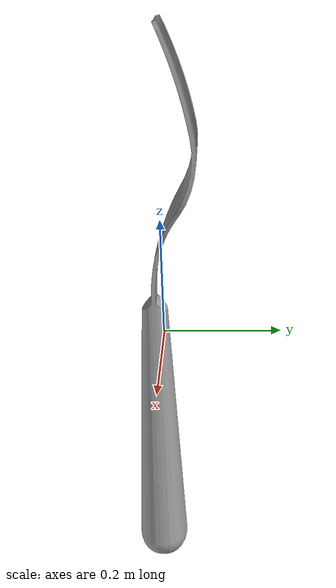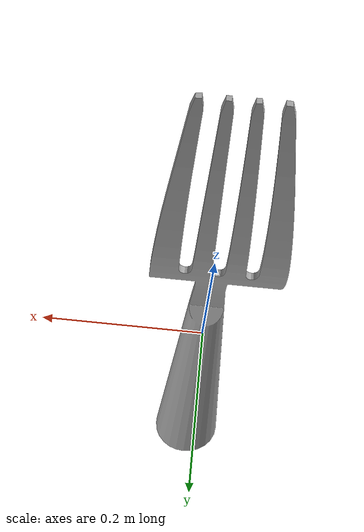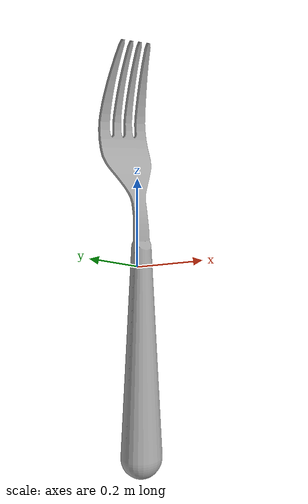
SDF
<?xml version="1.0" ?>
<sdf version="1.5">
  <model name='cutlery5'>
    <pose>0 0 0 0 0 0</pose>
    <static>1</static>
    <link name='body'>
      <collision name="cutlery5-coll">
        <pose>0 0 -0.5 0 0 0</pose>
        <geometry>
          <mesh>
            <uri>model://cutlery5/meshes/cutlery5.dae</uri>
          </mesh>
        </geometry>
      </collision>
      <visual name='cutlery5'>
        <cast_shadows>1</cast_shadows>
        <pose>0 0 -0.5 0 0 0</pose>
        <geometry>
          <mesh>
            <uri>model://cutlery5/meshes/cutlery5.dae</uri>
          </mesh>
        </geometry>
      </visual>
      <velocity_decay>
        <linear>0</linear>
        <angular>0</angular>
      </velocity_decay>
      <self_collide>0</self_collide>
      <kinematic>0</kinematic>
      <gravity>1</gravity>
    </link>
  </model>

</sdf>
